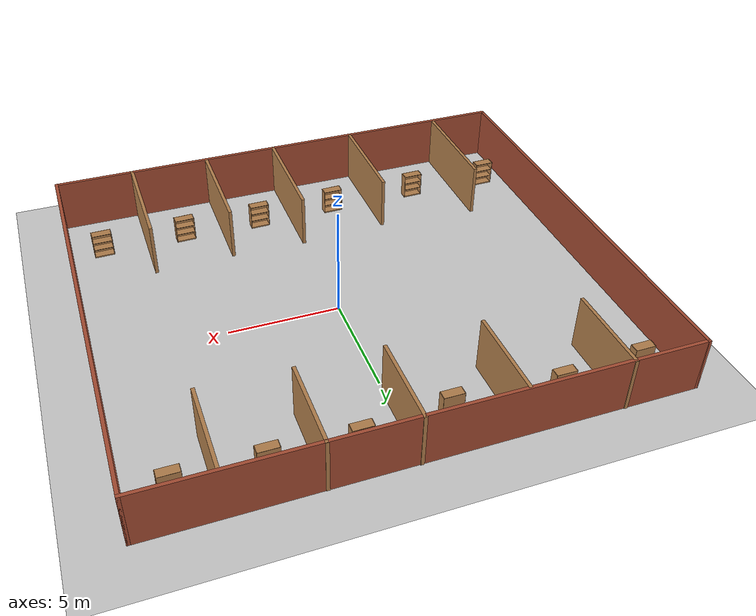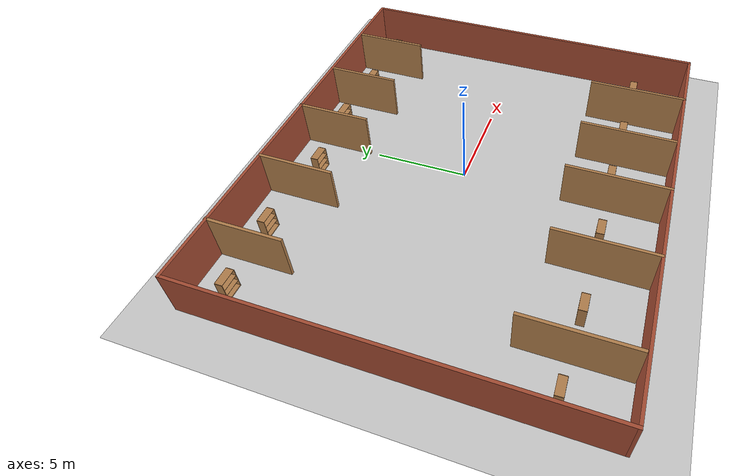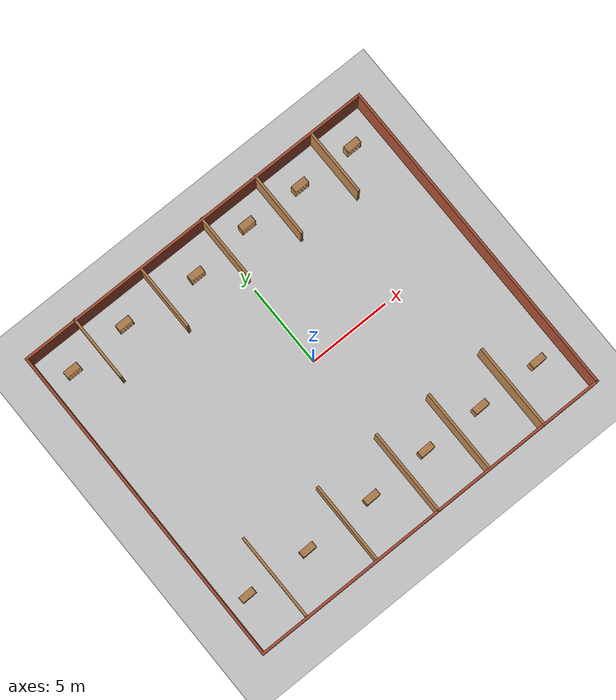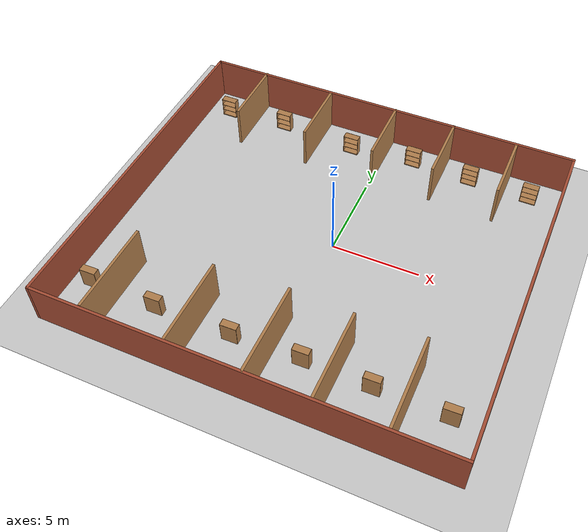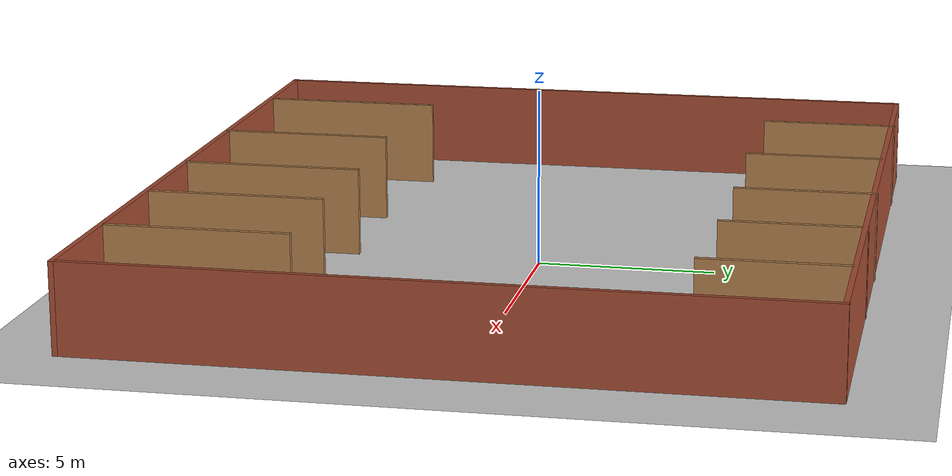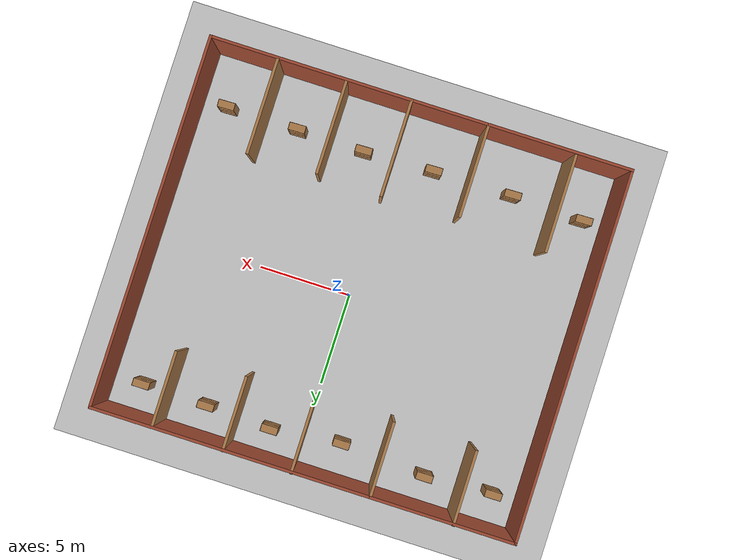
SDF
<sdf version="1.7">
 <world name="default">
  <light name="sun" type="directional">
   <pose>0 0 10 0 -0 0</pose>
   <diffuse>0.8 0.8 0.8 1</diffuse>
   <specular>0.2 0.2 0.2 1</specular>
   <attenuation>
    <range>1000</range>
    <constant>0.9</constant>
    <linear>0.01</linear>
    <quadratic>0.001</quadratic>
   </attenuation>
   <direction>-0.5 0.1 -0.9</direction>
   <spot><inner_angle>0</inner_angle><outer_angle>0</outer_angle><falloff>0</falloff></spot>
  </light>
  <model name="ground_plane">
   <static>1</static>
   <link name="link">
    <collision name="collision">
     <geometry><plane><normal>0 0 1</normal><size>100 100</size></plane></geometry>
     <surface><friction><ode><mu>100</mu><mu2>50</mu2></ode></friction></surface>
    </collision>
    <visual name="visual">
     <cast_shadows>0</cast_shadows>
     <geometry><plane><normal>0 0 1</normal><size>100 100</size></plane></geometry>
     <material>
      <script><uri>file://media/materials/scripts/gazebo.material</uri><name>Gazebo/Grey</name></script>
     </material>
    </visual>
   </link>
  </model>
  <gravity>0 0 -9.8</gravity>
  <magnetic_field>6e-06 2.3e-05 -4.2e-05</magnetic_field>
  <atmosphere type="adiabatic"/>
  <physics type="ode">
   <max_step_size>0.001</max_step_size>
   <real_time_factor>1</real_time_factor>
   <real_time_update_rate>1000</real_time_update_rate>
  </physics>
  <scene><ambient>0.4 0.4 0.4 1</ambient><background>0.7 0.7 0.7 1</background><shadows>1</shadows></scene>
  <audio><device>default</device></audio>
  <spherical_coordinates>
   <surface_model>EARTH_WGS84</surface_model>
   <latitude_deg>0</latitude_deg>
   <longitude_deg>0</longitude_deg>
   <elevation>0</elevation>
   <heading_deg>0</heading_deg>
  </spherical_coordinates>
  <model name="smart_factory">
   <pose>-0.561102 -0.508653 0 0 -0 0</pose>
   <link name="Wall_13">
    <collision name="Wall_13_Collision">
     <geometry><box><size>4 0.15 2.5</size></box></geometry>
     <pose>0 0 1.25 0 -0 0</pose>
    </collision>
    <visual name="Wall_13_Visual">
     <pose>0 0 1.25 0 -0 0</pose>
     <geometry><box><size>4 0.15 2.5</size></box></geometry>
     <material>
      <script><uri>file://media/materials/scripts/gazebo.material</uri><name>Gazebo/Wood</name></script>
      <ambient>1 1 1 1</ambient>
     </material>
     <meta><layer>0</layer></meta>
    </visual>
    <pose>-8.02693 8.01658 0 0 -0 -1.5708</pose>
   </link>
   <link name="Wall_15">
    <collision name="Wall_15_Collision">
     <geometry><box><size>4 0.15 2.5</size></box></geometry>
     <pose>0 0 1.25 0 -0 0</pose>
    </collision>
    <visual name="Wall_15_Visual">
     <pose>0 0 1.25 0 -0 0</pose>
     <geometry><box><size>4 0.15 2.5</size></box></geometry>
     <material>
      <script><uri>file://media/materials/scripts/gazebo.material</uri><name>Gazebo/Wood</name></script>
      <ambient>1 1 1 1</ambient>
     </material>
     <meta><layer>0</layer></meta>
    </visual>
    <pose>-3.60716 7.92353 0 0 -0 -1.5708</pose>
   </link>
   <link name="Wall_17">
    <collision name="Wall_17_Collision">
     <geometry><box><size>4 0.15 2.5</size></box></geometry>
     <pose>0 0 1.25 0 -0 0</pose>
    </collision>
    <visual name="Wall_17_Visual">
     <pose>0 0 1.25 0 -0 0</pose>
     <geometry><box><size>4 0.15 2.5</size></box></geometry>
     <material>
      <script><uri>file://media/materials/scripts/gazebo.material</uri><name>Gazebo/Wood</name></script>
      <ambient>1 1 1 1</ambient>
     </material>
     <meta><layer>0</layer></meta>
    </visual>
    <pose>0.579992 8.01658 0 0 -0 -1.5708</pose>
   </link>
   <link name="Wall_20">
    <collision name="Wall_20_Collision">
     <geometry><box><size>4 0.15 2.5</size></box></geometry>
     <pose>0 0 1.25 0 -0 0</pose>
    </collision>
    <visual name="Wall_20_Visual">
     <pose>0 0 1.25 0 -0 0</pose>
     <geometry><box><size>4 0.15 2.5</size></box></geometry>
     <material>
      <script><uri>file://media/materials/scripts/gazebo.material</uri><name>Gazebo/Wood</name></script>
      <ambient>1 1 1 1</ambient>
     </material>
     <meta><layer>0</layer></meta>
    </visual>
    <pose>4.22041 8.00192 0 0 -0 -1.5708</pose>
   </link>
   <link name="Wall_22">
    <collision name="Wall_22_Collision">
     <geometry><box><size>4 0.15 2.5</size></box></geometry>
     <pose>0 0 1.25 0 -0 0</pose>
    </collision>
    <visual name="Wall_22_Visual">
     <pose>0 0 1.25 0 -0 0</pose>
     <geometry><box><size>4 0.15 2.5</size></box></geometry>
     <material>
      <script><uri>file://media/materials/scripts/gazebo.material</uri><name>Gazebo/Wood</name></script>
      <ambient>1 1 1 1</ambient>
     </material>
     <meta><layer>0</layer></meta>
    </visual>
    <pose>8.00604 7.86619 0 0 -0 -1.5708</pose>
   </link>
   <link name="Wall_24">
    <collision name="Wall_24_Collision">
     <geometry><box><size>5.25 0.15 2.5</size></box></geometry>
     <pose>0 0 1.25 0 -0 0</pose>
    </collision>
    <visual name="Wall_24_Visual">
     <pose>0 0 1.25 0 -0 0</pose>
     <geometry><box><size>5.25 0.15 2.5</size></box></geometry>
     <material>
      <script><uri>file://media/materials/scripts/gazebo.material</uri><name>Gazebo/Wood</name></script>
      <ambient>1 1 1 1</ambient>
     </material>
     <meta><layer>0</layer></meta>
    </visual>
    <pose>-8.33576 -7.22006 0 0 -0 -1.5708</pose>
   </link>
   <link name="Wall_26">
    <collision name="Wall_26_Collision">
     <geometry><box><size>5 0.15 2.5</size></box></geometry>
     <pose>0 0 1.25 0 -0 0</pose>
    </collision>
    <visual name="Wall_26_Visual">
     <pose>0 0 1.25 0 -0 0</pose>
     <geometry><box><size>5 0.15 2.5</size></box></geometry>
     <material>
      <script><uri>file://media/materials/scripts/gazebo.material</uri><name>Gazebo/Wood</name></script>
      <ambient>1 1 1 1</ambient>
     </material>
     <meta><layer>0</layer></meta>
    </visual>
    <pose>-3.62754 -7.46957 0 0 -0 -1.5708</pose>
   </link>
   <link name="Wall_28">
    <collision name="Wall_28_Collision">
     <geometry><box><size>5.25 0.15 2.5</size></box></geometry>
     <pose>0 0 1.25 0 -0 0</pose>
    </collision>
    <visual name="Wall_28_Visual">
     <pose>0 0 1.25 0 -0 0</pose>
     <geometry><box><size>5.25 0.15 2.5</size></box></geometry>
     <material>
      <script><uri>file://media/materials/scripts/gazebo.material</uri><name>Gazebo/Wood</name></script>
      <ambient>1 1 1 1</ambient>
     </material>
     <meta><layer>0</layer></meta>
    </visual>
    <pose>0.507145 -7.38789 0 0 -0 -1.5708</pose>
   </link>
   <link name="Wall_30">
    <collision name="Wall_30_Collision">
     <geometry><box><size>5 0.15 2.5</size></box></geometry>
     <pose>0 0 1.25 0 -0 0</pose>
    </collision>
    <visual name="Wall_30_Visual">
     <pose>0 0 1.25 0 -0 0</pose>
     <geometry><box><size>5 0.15 2.5</size></box></geometry>
     <material>
      <script><uri>file://media/materials/scripts/gazebo.material</uri><name>Gazebo/Wood</name></script>
      <ambient>1 1 1 1</ambient>
     </material>
     <meta><layer>0</layer></meta>
    </visual>
    <pose>3.98481 -7.3699 0 0 -0 -1.5708</pose>
   </link>
   <link name="Wall_32">
    <collision name="Wall_32_Collision">
     <geometry><box><size>5.25 0.15 2.5</size></box></geometry>
     <pose>0 0 1.25 0 -0 0</pose>
    </collision>
    <visual name="Wall_32_Visual">
     <pose>0 0 1.25 0 -0 0</pose>
     <geometry><box><size>5.25 0.15 2.5</size></box></geometry>
     <material>
      <script><uri>file://media/materials/scripts/gazebo.material</uri><name>Gazebo/Wood</name></script>
      <ambient>1 1 1 1</ambient>
     </material>
     <meta><layer>0</layer></meta>
    </visual>
    <pose>7.67648 -7.38789 0 0 -0 -1.5708</pose>
   </link>
   <link name="Wall_6">
    <collision name="Wall_6_Collision">
     <geometry><box><size>22.75 0.15 2.5</size></box></geometry>
     <pose>0 0 1.25 0 -0 0</pose>
    </collision>
    <visual name="Wall_6_Visual">
     <pose>0 0 1.25 0 -0 0</pose>
     <geometry><box><size>22.75 0.15 2.5</size></box></geometry>
     <material>
      <script><uri>file://media/materials/scripts/gazebo.material</uri><name>Gazebo/Bricks</name></script>
      <ambient>1 1 1 1</ambient>
     </material>
     <meta><layer>0</layer></meta>
    </visual>
    <pose>-0 9.90842 0 0 -0 0</pose>
   </link>
   <link name="Wall_7">
    <collision name="Wall_7_Collision">
     <geometry><box><size>20 0.15 2.5</size></box></geometry>
     <pose>0 0 1.25 0 -0 0</pose>
    </collision>
    <visual name="Wall_7_Visual">
     <pose>0 0 1.25 0 -0 0</pose>
     <geometry><box><size>20 0.15 2.5</size></box></geometry>
     <material>
      <script><uri>file://media/materials/scripts/gazebo.material</uri><name>Gazebo/Bricks</name></script>
      <ambient>1 1 1 1</ambient>
     </material>
     <meta><layer>0</layer></meta>
    </visual>
    <pose>11.3 -0.016579 0 0 -0 -1.5708</pose>
   </link>
   <link name="Wall_8">
    <collision name="Wall_8_Collision">
     <geometry><box><size>22.75 0.15 2.5</size></box></geometry>
     <pose>0 0 1.25 0 -0 0</pose>
    </collision>
    <visual name="Wall_8_Visual">
     <pose>0 0 1.25 0 -0 0</pose>
     <geometry><box><size>22.75 0.15 2.5</size></box></geometry>
     <material>
      <script><uri>file://media/materials/scripts/gazebo.material</uri><name>Gazebo/Bricks</name></script>
      <ambient>1 1 1 1</ambient>
     </material>
     <meta><layer>0</layer></meta>
    </visual>
    <pose>-0 -9.94158 0 0 -0 3.14159</pose>
   </link>
   <link name="Wall_9">
    <collision name="Wall_9_Collision">
     <geometry><box><size>20 0.15 2.5</size></box></geometry>
     <pose>0 0 1.25 0 -0 0</pose>
    </collision>
    <visual name="Wall_9_Visual">
     <pose>0 0 1.25 0 -0 0</pose>
     <geometry><box><size>20 0.15 2.5</size></box></geometry>
     <material>
      <script><uri>file://media/materials/scripts/gazebo.material</uri><name>Gazebo/Bricks</name></script>
      <ambient>1 1 1 1</ambient>
     </material>
     <meta><layer>0</layer></meta>
    </visual>
    <pose>-11.3 -0.016579 0 0 -0 1.5708</pose>
   </link>
   <static>1</static>
  </model>
  <model name="bookshelf">
   <static>1</static>
   <link name="link">
    <inertial><mass>1</mass></inertial>
    <collision name="back">
     <pose>0 0.005 0.6 0 -0 0</pose>
     <geometry><box><size>0.9 0.01 1.2</size></box></geometry>
    </collision>
    <visual name="visual1">
     <pose>0 0.005 0.6 0 -0 0</pose>
     <geometry><box><size>0.9 0.01 1.2</size></box></geometry>
     <material>
      <script><uri>file://media/materials/scripts/gazebo.material</uri><name>Gazebo/Wood</name></script>
     </material>
    </visual>
    <collision name="left_side">
     <pose>0.45 -0.195 0.6 0 -0 0</pose>
     <geometry><box><size>0.02 0.4 1.2</size></box></geometry>
    </collision>
    <visual name="visual2">
     <pose>0.45 -0.195 0.6 0 -0 0</pose>
     <geometry><box><size>0.02 0.4 1.2</size></box></geometry>
     <material>
      <script><uri>file://media/materials/scripts/gazebo.material</uri><name>Gazebo/Wood</name></script>
     </material>
    </visual>
    <collision name="right_side">
     <pose>-0.45 -0.195 0.6 0 -0 0</pose>
     <geometry><box><size>0.02 0.4 1.2</size></box></geometry>
    </collision>
    <visual name="visual3">
     <pose>-0.45 -0.195 0.6 0 -0 0</pose>
     <geometry><box><size>0.02 0.4 1.2</size></box></geometry>
     <material>
      <script><uri>file://media/materials/scripts/gazebo.material</uri><name>Gazebo/Wood</name></script>
     </material>
    </visual>
    <collision name="bottom">
     <pose>0 -0.195 0.03 0 -0 0</pose>
     <geometry><box><size>0.88 0.4 0.06</size></box></geometry>
    </collision>
    <visual name="visual4">
     <pose>0 -0.195 0.03 0 -0 0</pose>
     <geometry><box><size>0.88 0.4 0.06</size></box></geometry>
     <material>
      <script><uri>file://media/materials/scripts/gazebo.material</uri><name>Gazebo/Wood</name></script>
     </material>
    </visual>
    <collision name="top">
     <pose>0 -0.195 1.19 0 -0 0</pose>
     <geometry><box><size>0.88 0.4 0.02</size></box></geometry>
    </collision>
    <visual name="visual5">
     <pose>0 -0.195 1.19 0 -0 0</pose>
     <geometry><box><size>0.88 0.4 0.02</size></box></geometry>
     <material>
      <script><uri>file://media/materials/scripts/gazebo.material</uri><name>Gazebo/Wood</name></script>
     </material>
    </visual>
    <collision name="low_shelf">
     <pose>0 -0.195 0.43 0 -0 0</pose>
     <geometry><box><size>0.88 0.4 0.02</size></box></geometry>
    </collision>
    <visual name="visual6">
     <pose>0 -0.195 0.43 0 -0 0</pose>
     <geometry><box><size>0.88 0.4 0.02</size></box></geometry>
     <material>
      <script><uri>file://media/materials/scripts/gazebo.material</uri><name>Gazebo/Wood</name></script>
     </material>
    </visual>
    <collision name="high_shelf">
     <pose>0 -0.195 0.8 0 -0 0</pose>
     <geometry><box><size>0.88 0.4 0.02</size></box></geometry>
    </collision>
    <visual name="visual7">
     <pose>0 -0.195 0.8 0 -0 0</pose>
     <geometry><box><size>0.88 0.4 0.02</size></box></geometry>
     <material>
      <script><uri>file://media/materials/scripts/gazebo.material</uri><name>Gazebo/Wood</name></script>
     </material>
    </visual>
   </link>
   <pose>8.95898 7.93404 0 0 -0 0</pose>
  </model>
  <model name="bookshelf_0">
   <static>1</static>
   <link name="link">
    <inertial><mass>1</mass></inertial>
    <collision name="back">
     <pose>0 0.005 0.6 0 -0 0</pose>
     <geometry><box><size>0.9 0.01 1.2</size></box></geometry>
    </collision>
    <visual name="visual1">
     <pose>0 0.005 0.6 0 -0 0</pose>
     <geometry><box><size>0.9 0.01 1.2</size></box></geometry>
     <material>
      <script><uri>file://media/materials/scripts/gazebo.material</uri><name>Gazebo/Wood</name></script>
     </material>
    </visual>
    <collision name="left_side">
     <pose>0.45 -0.195 0.6 0 -0 0</pose>
     <geometry><box><size>0.02 0.4 1.2</size></box></geometry>
    </collision>
    <visual name="visual2">
     <pose>0.45 -0.195 0.6 0 -0 0</pose>
     <geometry><box><size>0.02 0.4 1.2</size></box></geometry>
     <material>
      <script><uri>file://media/materials/scripts/gazebo.material</uri><name>Gazebo/Wood</name></script>
     </material>
    </visual>
    <collision name="right_side">
     <pose>-0.45 -0.195 0.6 0 -0 0</pose>
     <geometry><box><size>0.02 0.4 1.2</size></box></geometry>
    </collision>
    <visual name="visual3">
     <pose>-0.45 -0.195 0.6 0 -0 0</pose>
     <geometry><box><size>0.02 0.4 1.2</size></box></geometry>
     <material>
      <script><uri>file://media/materials/scripts/gazebo.material</uri><name>Gazebo/Wood</name></script>
     </material>
    </visual>
    <collision name="bottom">
     <pose>0 -0.195 0.03 0 -0 0</pose>
     <geometry><box><size>0.88 0.4 0.06</size></box></geometry>
    </collision>
    <visual name="visual4">
     <pose>0 -0.195 0.03 0 -0 0</pose>
     <geometry><box><size>0.88 0.4 0.06</size></box></geometry>
     <material>
      <script><uri>file://media/materials/scripts/gazebo.material</uri><name>Gazebo/Wood</name></script>
     </material>
    </visual>
    <collision name="top">
     <pose>0 -0.195 1.19 0 -0 0</pose>
     <geometry><box><size>0.88 0.4 0.02</size></box></geometry>
    </collision>
    <visual name="visual5">
     <pose>0 -0.195 1.19 0 -0 0</pose>
     <geometry><box><size>0.88 0.4 0.02</size></box></geometry>
     <material>
      <script><uri>file://media/materials/scripts/gazebo.material</uri><name>Gazebo/Wood</name></script>
     </material>
    </visual>
    <collision name="low_shelf">
     <pose>0 -0.195 0.43 0 -0 0</pose>
     <geometry><box><size>0.88 0.4 0.02</size></box></geometry>
    </collision>
    <visual name="visual6">
     <pose>0 -0.195 0.43 0 -0 0</pose>
     <geometry><box><size>0.88 0.4 0.02</size></box></geometry>
     <material>
      <script><uri>file://media/materials/scripts/gazebo.material</uri><name>Gazebo/Wood</name></script>
     </material>
    </visual>
    <collision name="high_shelf">
     <pose>0 -0.195 0.8 0 -0 0</pose>
     <geometry><box><size>0.88 0.4 0.02</size></box></geometry>
    </collision>
    <visual name="visual7">
     <pose>0 -0.195 0.8 0 -0 0</pose>
     <geometry><box><size>0.88 0.4 0.02</size></box></geometry>
     <material>
      <script><uri>file://media/materials/scripts/gazebo.material</uri><name>Gazebo/Wood</name></script>
     </material>
    </visual>
   </link>
   <pose>5.38531 8.00358 0 0 -0 0</pose>
  </model>
  <model name="bookshelf_1">
   <static>1</static>
   <link name="link">
    <inertial><mass>1</mass></inertial>
    <collision name="back">
     <pose>0 0.005 0.6 0 -0 0</pose>
     <geometry><box><size>0.9 0.01 1.2</size></box></geometry>
    </collision>
    <visual name="visual1">
     <pose>0 0.005 0.6 0 -0 0</pose>
     <geometry><box><size>0.9 0.01 1.2</size></box></geometry>
     <material>
      <script><uri>file://media/materials/scripts/gazebo.material</uri><name>Gazebo/Wood</name></script>
     </material>
    </visual>
    <collision name="left_side">
     <pose>0.45 -0.195 0.6 0 -0 0</pose>
     <geometry><box><size>0.02 0.4 1.2</size></box></geometry>
    </collision>
    <visual name="visual2">
     <pose>0.45 -0.195 0.6 0 -0 0</pose>
     <geometry><box><size>0.02 0.4 1.2</size></box></geometry>
     <material>
      <script><uri>file://media/materials/scripts/gazebo.material</uri><name>Gazebo/Wood</name></script>
     </material>
    </visual>
    <collision name="right_side">
     <pose>-0.45 -0.195 0.6 0 -0 0</pose>
     <geometry><box><size>0.02 0.4 1.2</size></box></geometry>
    </collision>
    <visual name="visual3">
     <pose>-0.45 -0.195 0.6 0 -0 0</pose>
     <geometry><box><size>0.02 0.4 1.2</size></box></geometry>
     <material>
      <script><uri>file://media/materials/scripts/gazebo.material</uri><name>Gazebo/Wood</name></script>
     </material>
    </visual>
    <collision name="bottom">
     <pose>0 -0.195 0.03 0 -0 0</pose>
     <geometry><box><size>0.88 0.4 0.06</size></box></geometry>
    </collision>
    <visual name="visual4">
     <pose>0 -0.195 0.03 0 -0 0</pose>
     <geometry><box><size>0.88 0.4 0.06</size></box></geometry>
     <material>
      <script><uri>file://media/materials/scripts/gazebo.material</uri><name>Gazebo/Wood</name></script>
     </material>
    </visual>
    <collision name="top">
     <pose>0 -0.195 1.19 0 -0 0</pose>
     <geometry><box><size>0.88 0.4 0.02</size></box></geometry>
    </collision>
    <visual name="visual5">
     <pose>0 -0.195 1.19 0 -0 0</pose>
     <geometry><box><size>0.88 0.4 0.02</size></box></geometry>
     <material>
      <script><uri>file://media/materials/scripts/gazebo.material</uri><name>Gazebo/Wood</name></script>
     </material>
    </visual>
    <collision name="low_shelf">
     <pose>0 -0.195 0.43 0 -0 0</pose>
     <geometry><box><size>0.88 0.4 0.02</size></box></geometry>
    </collision>
    <visual name="visual6">
     <pose>0 -0.195 0.43 0 -0 0</pose>
     <geometry><box><size>0.88 0.4 0.02</size></box></geometry>
     <material>
      <script><uri>file://media/materials/scripts/gazebo.material</uri><name>Gazebo/Wood</name></script>
     </material>
    </visual>
    <collision name="high_shelf">
     <pose>0 -0.195 0.8 0 -0 0</pose>
     <geometry><box><size>0.88 0.4 0.02</size></box></geometry>
    </collision>
    <visual name="visual7">
     <pose>0 -0.195 0.8 0 -0 0</pose>
     <geometry><box><size>0.88 0.4 0.02</size></box></geometry>
     <material>
      <script><uri>file://media/materials/scripts/gazebo.material</uri><name>Gazebo/Wood</name></script>
     </material>
    </visual>
   </link>
   <pose>1.83019 8.15231 0 0 -0 0</pose>
  </model>
  <model name="bookshelf_2">
   <static>1</static>
   <link name="link">
    <inertial><mass>1</mass></inertial>
    <collision name="back">
     <pose>0 0.005 0.6 0 -0 0</pose>
     <geometry><box><size>0.9 0.01 1.2</size></box></geometry>
    </collision>
    <visual name="visual1">
     <pose>0 0.005 0.6 0 -0 0</pose>
     <geometry><box><size>0.9 0.01 1.2</size></box></geometry>
     <material>
      <script><uri>file://media/materials/scripts/gazebo.material</uri><name>Gazebo/Wood</name></script>
     </material>
    </visual>
    <collision name="left_side">
     <pose>0.45 -0.195 0.6 0 -0 0</pose>
     <geometry><box><size>0.02 0.4 1.2</size></box></geometry>
    </collision>
    <visual name="visual2">
     <pose>0.45 -0.195 0.6 0 -0 0</pose>
     <geometry><box><size>0.02 0.4 1.2</size></box></geometry>
     <material>
      <script><uri>file://media/materials/scripts/gazebo.material</uri><name>Gazebo/Wood</name></script>
     </material>
    </visual>
    <collision name="right_side">
     <pose>-0.45 -0.195 0.6 0 -0 0</pose>
     <geometry><box><size>0.02 0.4 1.2</size></box></geometry>
    </collision>
    <visual name="visual3">
     <pose>-0.45 -0.195 0.6 0 -0 0</pose>
     <geometry><box><size>0.02 0.4 1.2</size></box></geometry>
     <material>
      <script><uri>file://media/materials/scripts/gazebo.material</uri><name>Gazebo/Wood</name></script>
     </material>
    </visual>
    <collision name="bottom">
     <pose>0 -0.195 0.03 0 -0 0</pose>
     <geometry><box><size>0.88 0.4 0.06</size></box></geometry>
    </collision>
    <visual name="visual4">
     <pose>0 -0.195 0.03 0 -0 0</pose>
     <geometry><box><size>0.88 0.4 0.06</size></box></geometry>
     <material>
      <script><uri>file://media/materials/scripts/gazebo.material</uri><name>Gazebo/Wood</name></script>
     </material>
    </visual>
    <collision name="top">
     <pose>0 -0.195 1.19 0 -0 0</pose>
     <geometry><box><size>0.88 0.4 0.02</size></box></geometry>
    </collision>
    <visual name="visual5">
     <pose>0 -0.195 1.19 0 -0 0</pose>
     <geometry><box><size>0.88 0.4 0.02</size></box></geometry>
     <material>
      <script><uri>file://media/materials/scripts/gazebo.material</uri><name>Gazebo/Wood</name></script>
     </material>
    </visual>
    <collision name="low_shelf">
     <pose>0 -0.195 0.43 0 -0 0</pose>
     <geometry><box><size>0.88 0.4 0.02</size></box></geometry>
    </collision>
    <visual name="visual6">
     <pose>0 -0.195 0.43 0 -0 0</pose>
     <geometry><box><size>0.88 0.4 0.02</size></box></geometry>
     <material>
      <script><uri>file://media/materials/scripts/gazebo.material</uri><name>Gazebo/Wood</name></script>
     </material>
    </visual>
    <collision name="high_shelf">
     <pose>0 -0.195 0.8 0 -0 0</pose>
     <geometry><box><size>0.88 0.4 0.02</size></box></geometry>
    </collision>
    <visual name="visual7">
     <pose>0 -0.195 0.8 0 -0 0</pose>
     <geometry><box><size>0.88 0.4 0.02</size></box></geometry>
     <material>
      <script><uri>file://media/materials/scripts/gazebo.material</uri><name>Gazebo/Wood</name></script>
     </material>
    </visual>
   </link>
   <pose>-1.9992 7.73375 0 0 -0 0</pose>
  </model>
  <model name="bookshelf_3">
   <static>1</static>
   <link name="link">
    <inertial><mass>1</mass></inertial>
    <collision name="back">
     <pose>0 0.005 0.6 0 -0 0</pose>
     <geometry><box><size>0.9 0.01 1.2</size></box></geometry>
    </collision>
    <visual name="visual1">
     <pose>0 0.005 0.6 0 -0 0</pose>
     <geometry><box><size>0.9 0.01 1.2</size></box></geometry>
     <material>
      <script><uri>file://media/materials/scripts/gazebo.material</uri><name>Gazebo/Wood</name></script>
     </material>
    </visual>
    <collision name="left_side">
     <pose>0.45 -0.195 0.6 0 -0 0</pose>
     <geometry><box><size>0.02 0.4 1.2</size></box></geometry>
    </collision>
    <visual name="visual2">
     <pose>0.45 -0.195 0.6 0 -0 0</pose>
     <geometry><box><size>0.02 0.4 1.2</size></box></geometry>
     <material>
      <script><uri>file://media/materials/scripts/gazebo.material</uri><name>Gazebo/Wood</name></script>
     </material>
    </visual>
    <collision name="right_side">
     <pose>-0.45 -0.195 0.6 0 -0 0</pose>
     <geometry><box><size>0.02 0.4 1.2</size></box></geometry>
    </collision>
    <visual name="visual3">
     <pose>-0.45 -0.195 0.6 0 -0 0</pose>
     <geometry><box><size>0.02 0.4 1.2</size></box></geometry>
     <material>
      <script><uri>file://media/materials/scripts/gazebo.material</uri><name>Gazebo/Wood</name></script>
     </material>
    </visual>
    <collision name="bottom">
     <pose>0 -0.195 0.03 0 -0 0</pose>
     <geometry><box><size>0.88 0.4 0.06</size></box></geometry>
    </collision>
    <visual name="visual4">
     <pose>0 -0.195 0.03 0 -0 0</pose>
     <geometry><box><size>0.88 0.4 0.06</size></box></geometry>
     <material>
      <script><uri>file://media/materials/scripts/gazebo.material</uri><name>Gazebo/Wood</name></script>
     </material>
    </visual>
    <collision name="top">
     <pose>0 -0.195 1.19 0 -0 0</pose>
     <geometry><box><size>0.88 0.4 0.02</size></box></geometry>
    </collision>
    <visual name="visual5">
     <pose>0 -0.195 1.19 0 -0 0</pose>
     <geometry><box><size>0.88 0.4 0.02</size></box></geometry>
     <material>
      <script><uri>file://media/materials/scripts/gazebo.material</uri><name>Gazebo/Wood</name></script>
     </material>
    </visual>
    <collision name="low_shelf">
     <pose>0 -0.195 0.43 0 -0 0</pose>
     <geometry><box><size>0.88 0.4 0.02</size></box></geometry>
    </collision>
    <visual name="visual6">
     <pose>0 -0.195 0.43 0 -0 0</pose>
     <geometry><box><size>0.88 0.4 0.02</size></box></geometry>
     <material>
      <script><uri>file://media/materials/scripts/gazebo.material</uri><name>Gazebo/Wood</name></script>
     </material>
    </visual>
    <collision name="high_shelf">
     <pose>0 -0.195 0.8 0 -0 0</pose>
     <geometry><box><size>0.88 0.4 0.02</size></box></geometry>
    </collision>
    <visual name="visual7">
     <pose>0 -0.195 0.8 0 -0 0</pose>
     <geometry><box><size>0.88 0.4 0.02</size></box></geometry>
     <material>
      <script><uri>file://media/materials/scripts/gazebo.material</uri><name>Gazebo/Wood</name></script>
     </material>
    </visual>
   </link>
   <pose>-6.6604 8.06024 0 0 -0 0</pose>
  </model>
  <model name="bookshelf_4">
   <static>1</static>
   <link name="link">
    <inertial><mass>1</mass></inertial>
    <collision name="back">
     <pose>0 0.005 0.6 0 -0 0</pose>
     <geometry><box><size>0.9 0.01 1.2</size></box></geometry>
    </collision>
    <visual name="visual1">
     <pose>0 0.005 0.6 0 -0 0</pose>
     <geometry><box><size>0.9 0.01 1.2</size></box></geometry>
     <material>
      <script><uri>file://media/materials/scripts/gazebo.material</uri><name>Gazebo/Wood</name></script>
     </material>
    </visual>
    <collision name="left_side">
     <pose>0.45 -0.195 0.6 0 -0 0</pose>
     <geometry><box><size>0.02 0.4 1.2</size></box></geometry>
    </collision>
    <visual name="visual2">
     <pose>0.45 -0.195 0.6 0 -0 0</pose>
     <geometry><box><size>0.02 0.4 1.2</size></box></geometry>
     <material>
      <script><uri>file://media/materials/scripts/gazebo.material</uri><name>Gazebo/Wood</name></script>
     </material>
    </visual>
    <collision name="right_side">
     <pose>-0.45 -0.195 0.6 0 -0 0</pose>
     <geometry><box><size>0.02 0.4 1.2</size></box></geometry>
    </collision>
    <visual name="visual3">
     <pose>-0.45 -0.195 0.6 0 -0 0</pose>
     <geometry><box><size>0.02 0.4 1.2</size></box></geometry>
     <material>
      <script><uri>file://media/materials/scripts/gazebo.material</uri><name>Gazebo/Wood</name></script>
     </material>
    </visual>
    <collision name="bottom">
     <pose>0 -0.195 0.03 0 -0 0</pose>
     <geometry><box><size>0.88 0.4 0.06</size></box></geometry>
    </collision>
    <visual name="visual4">
     <pose>0 -0.195 0.03 0 -0 0</pose>
     <geometry><box><size>0.88 0.4 0.06</size></box></geometry>
     <material>
      <script><uri>file://media/materials/scripts/gazebo.material</uri><name>Gazebo/Wood</name></script>
     </material>
    </visual>
    <collision name="top">
     <pose>0 -0.195 1.19 0 -0 0</pose>
     <geometry><box><size>0.88 0.4 0.02</size></box></geometry>
    </collision>
    <visual name="visual5">
     <pose>0 -0.195 1.19 0 -0 0</pose>
     <geometry><box><size>0.88 0.4 0.02</size></box></geometry>
     <material>
      <script><uri>file://media/materials/scripts/gazebo.material</uri><name>Gazebo/Wood</name></script>
     </material>
    </visual>
    <collision name="low_shelf">
     <pose>0 -0.195 0.43 0 -0 0</pose>
     <geometry><box><size>0.88 0.4 0.02</size></box></geometry>
    </collision>
    <visual name="visual6">
     <pose>0 -0.195 0.43 0 -0 0</pose>
     <geometry><box><size>0.88 0.4 0.02</size></box></geometry>
     <material>
      <script><uri>file://media/materials/scripts/gazebo.material</uri><name>Gazebo/Wood</name></script>
     </material>
    </visual>
    <collision name="high_shelf">
     <pose>0 -0.195 0.8 0 -0 0</pose>
     <geometry><box><size>0.88 0.4 0.02</size></box></geometry>
    </collision>
    <visual name="visual7">
     <pose>0 -0.195 0.8 0 -0 0</pose>
     <geometry><box><size>0.88 0.4 0.02</size></box></geometry>
     <material>
      <script><uri>file://media/materials/scripts/gazebo.material</uri><name>Gazebo/Wood</name></script>
     </material>
    </visual>
   </link>
   <pose>-10.3734 7.84133 0 0 -0 0</pose>
  </model>
  <model name="bookshelf_5">
   <static>1</static>
   <link name="link">
    <inertial><mass>1</mass></inertial>
    <collision name="back">
     <pose>0 0.005 0.6 0 -0 0</pose>
     <geometry><box><size>0.9 0.01 1.2</size></box></geometry>
    </collision>
    <visual name="visual1">
     <pose>0 0.005 0.6 0 -0 0</pose>
     <geometry><box><size>0.9 0.01 1.2</size></box></geometry>
     <material>
      <script><uri>file://media/materials/scripts/gazebo.material</uri><name>Gazebo/Wood</name></script>
     </material>
    </visual>
    <collision name="left_side">
     <pose>0.45 -0.195 0.6 0 -0 0</pose>
     <geometry><box><size>0.02 0.4 1.2</size></box></geometry>
    </collision>
    <visual name="visual2">
     <pose>0.45 -0.195 0.6 0 -0 0</pose>
     <geometry><box><size>0.02 0.4 1.2</size></box></geometry>
     <material>
      <script><uri>file://media/materials/scripts/gazebo.material</uri><name>Gazebo/Wood</name></script>
     </material>
    </visual>
    <collision name="right_side">
     <pose>-0.45 -0.195 0.6 0 -0 0</pose>
     <geometry><box><size>0.02 0.4 1.2</size></box></geometry>
    </collision>
    <visual name="visual3">
     <pose>-0.45 -0.195 0.6 0 -0 0</pose>
     <geometry><box><size>0.02 0.4 1.2</size></box></geometry>
     <material>
      <script><uri>file://media/materials/scripts/gazebo.material</uri><name>Gazebo/Wood</name></script>
     </material>
    </visual>
    <collision name="bottom">
     <pose>0 -0.195 0.03 0 -0 0</pose>
     <geometry><box><size>0.88 0.4 0.06</size></box></geometry>
    </collision>
    <visual name="visual4">
     <pose>0 -0.195 0.03 0 -0 0</pose>
     <geometry><box><size>0.88 0.4 0.06</size></box></geometry>
     <material>
      <script><uri>file://media/materials/scripts/gazebo.material</uri><name>Gazebo/Wood</name></script>
     </material>
    </visual>
    <collision name="top">
     <pose>0 -0.195 1.19 0 -0 0</pose>
     <geometry><box><size>0.88 0.4 0.02</size></box></geometry>
    </collision>
    <visual name="visual5">
     <pose>0 -0.195 1.19 0 -0 0</pose>
     <geometry><box><size>0.88 0.4 0.02</size></box></geometry>
     <material>
      <script><uri>file://media/materials/scripts/gazebo.material</uri><name>Gazebo/Wood</name></script>
     </material>
    </visual>
    <collision name="low_shelf">
     <pose>0 -0.195 0.43 0 -0 0</pose>
     <geometry><box><size>0.88 0.4 0.02</size></box></geometry>
    </collision>
    <visual name="visual6">
     <pose>0 -0.195 0.43 0 -0 0</pose>
     <geometry><box><size>0.88 0.4 0.02</size></box></geometry>
     <material>
      <script><uri>file://media/materials/scripts/gazebo.material</uri><name>Gazebo/Wood</name></script>
     </material>
    </visual>
    <collision name="high_shelf">
     <pose>0 -0.195 0.8 0 -0 0</pose>
     <geometry><box><size>0.88 0.4 0.02</size></box></geometry>
    </collision>
    <visual name="visual7">
     <pose>0 -0.195 0.8 0 -0 0</pose>
     <geometry><box><size>0.88 0.4 0.02</size></box></geometry>
     <material>
      <script><uri>file://media/materials/scripts/gazebo.material</uri><name>Gazebo/Wood</name></script>
     </material>
    </visual>
   </link>
   <pose>9.22281 -7.79094 0 0 -0 -3.11758</pose>
  </model>
  <model name="bookshelf_5_clone">
   <static>1</static>
   <link name="link">
    <inertial><mass>1</mass></inertial>
    <collision name="back">
     <pose>0 0.005 0.6 0 -0 0</pose>
     <geometry><box><size>0.9 0.01 1.2</size></box></geometry>
    </collision>
    <visual name="visual1">
     <pose>0 0.005 0.6 0 -0 0</pose>
     <geometry><box><size>0.9 0.01 1.2</size></box></geometry>
     <material>
      <script><uri>file://media/materials/scripts/gazebo.material</uri><name>Gazebo/Wood</name></script>
     </material>
    </visual>
    <collision name="left_side">
     <pose>0.45 -0.195 0.6 0 -0 0</pose>
     <geometry><box><size>0.02 0.4 1.2</size></box></geometry>
    </collision>
    <visual name="visual2">
     <pose>0.45 -0.195 0.6 0 -0 0</pose>
     <geometry><box><size>0.02 0.4 1.2</size></box></geometry>
     <material>
      <script><uri>file://media/materials/scripts/gazebo.material</uri><name>Gazebo/Wood</name></script>
     </material>
    </visual>
    <collision name="right_side">
     <pose>-0.45 -0.195 0.6 0 -0 0</pose>
     <geometry><box><size>0.02 0.4 1.2</size></box></geometry>
    </collision>
    <visual name="visual3">
     <pose>-0.45 -0.195 0.6 0 -0 0</pose>
     <geometry><box><size>0.02 0.4 1.2</size></box></geometry>
     <material>
      <script><uri>file://media/materials/scripts/gazebo.material</uri><name>Gazebo/Wood</name></script>
     </material>
    </visual>
    <collision name="bottom">
     <pose>0 -0.195 0.03 0 -0 0</pose>
     <geometry><box><size>0.88 0.4 0.06</size></box></geometry>
    </collision>
    <visual name="visual4">
     <pose>0 -0.195 0.03 0 -0 0</pose>
     <geometry><box><size>0.88 0.4 0.06</size></box></geometry>
     <material>
      <script><uri>file://media/materials/scripts/gazebo.material</uri><name>Gazebo/Wood</name></script>
     </material>
    </visual>
    <collision name="top">
     <pose>0 -0.195 1.19 0 -0 0</pose>
     <geometry><box><size>0.88 0.4 0.02</size></box></geometry>
    </collision>
    <visual name="visual5">
     <pose>0 -0.195 1.19 0 -0 0</pose>
     <geometry><box><size>0.88 0.4 0.02</size></box></geometry>
     <material>
      <script><uri>file://media/materials/scripts/gazebo.material</uri><name>Gazebo/Wood</name></script>
     </material>
    </visual>
    <collision name="low_shelf">
     <pose>0 -0.195 0.43 0 -0 0</pose>
     <geometry><box><size>0.88 0.4 0.02</size></box></geometry>
    </collision>
    <visual name="visual6">
     <pose>0 -0.195 0.43 0 -0 0</pose>
     <geometry><box><size>0.88 0.4 0.02</size></box></geometry>
     <material>
      <script><uri>file://media/materials/scripts/gazebo.material</uri><name>Gazebo/Wood</name></script>
     </material>
    </visual>
    <collision name="high_shelf">
     <pose>0 -0.195 0.8 0 -0 0</pose>
     <geometry><box><size>0.88 0.4 0.02</size></box></geometry>
    </collision>
    <visual name="visual7">
     <pose>0 -0.195 0.8 0 -0 0</pose>
     <geometry><box><size>0.88 0.4 0.02</size></box></geometry>
     <material>
      <script><uri>file://media/materials/scripts/gazebo.material</uri><name>Gazebo/Wood</name></script>
     </material>
    </visual>
   </link>
   <pose>5.29064 -7.76968 0 0 0 -3.11758</pose>
  </model>
  <model name="bookshelf_5_clone_0">
   <static>1</static>
   <link name="link">
    <inertial><mass>1</mass></inertial>
    <collision name="back">
     <pose>0 0.005 0.6 0 -0 0</pose>
     <geometry><box><size>0.9 0.01 1.2</size></box></geometry>
    </collision>
    <visual name="visual1">
     <pose>0 0.005 0.6 0 -0 0</pose>
     <geometry><box><size>0.9 0.01 1.2</size></box></geometry>
     <material>
      <script><uri>file://media/materials/scripts/gazebo.material</uri><name>Gazebo/Wood</name></script>
     </material>
    </visual>
    <collision name="left_side">
     <pose>0.45 -0.195 0.6 0 -0 0</pose>
     <geometry><box><size>0.02 0.4 1.2</size></box></geometry>
    </collision>
    <visual name="visual2">
     <pose>0.45 -0.195 0.6 0 -0 0</pose>
     <geometry><box><size>0.02 0.4 1.2</size></box></geometry>
     <material>
      <script><uri>file://media/materials/scripts/gazebo.material</uri><name>Gazebo/Wood</name></script>
     </material>
    </visual>
    <collision name="right_side">
     <pose>-0.45 -0.195 0.6 0 -0 0</pose>
     <geometry><box><size>0.02 0.4 1.2</size></box></geometry>
    </collision>
    <visual name="visual3">
     <pose>-0.45 -0.195 0.6 0 -0 0</pose>
     <geometry><box><size>0.02 0.4 1.2</size></box></geometry>
     <material>
      <script><uri>file://media/materials/scripts/gazebo.material</uri><name>Gazebo/Wood</name></script>
     </material>
    </visual>
    <collision name="bottom">
     <pose>0 -0.195 0.03 0 -0 0</pose>
     <geometry><box><size>0.88 0.4 0.06</size></box></geometry>
    </collision>
    <visual name="visual4">
     <pose>0 -0.195 0.03 0 -0 0</pose>
     <geometry><box><size>0.88 0.4 0.06</size></box></geometry>
     <material>
      <script><uri>file://media/materials/scripts/gazebo.material</uri><name>Gazebo/Wood</name></script>
     </material>
    </visual>
    <collision name="top">
     <pose>0 -0.195 1.19 0 -0 0</pose>
     <geometry><box><size>0.88 0.4 0.02</size></box></geometry>
    </collision>
    <visual name="visual5">
     <pose>0 -0.195 1.19 0 -0 0</pose>
     <geometry><box><size>0.88 0.4 0.02</size></box></geometry>
     <material>
      <script><uri>file://media/materials/scripts/gazebo.material</uri><name>Gazebo/Wood</name></script>
     </material>
    </visual>
    <collision name="low_shelf">
     <pose>0 -0.195 0.43 0 -0 0</pose>
     <geometry><box><size>0.88 0.4 0.02</size></box></geometry>
    </collision>
    <visual name="visual6">
     <pose>0 -0.195 0.43 0 -0 0</pose>
     <geometry><box><size>0.88 0.4 0.02</size></box></geometry>
     <material>
      <script><uri>file://media/materials/scripts/gazebo.material</uri><name>Gazebo/Wood</name></script>
     </material>
    </visual>
    <collision name="high_shelf">
     <pose>0 -0.195 0.8 0 -0 0</pose>
     <geometry><box><size>0.88 0.4 0.02</size></box></geometry>
    </collision>
    <visual name="visual7">
     <pose>0 -0.195 0.8 0 -0 0</pose>
     <geometry><box><size>0.88 0.4 0.02</size></box></geometry>
     <material>
      <script><uri>file://media/materials/scripts/gazebo.material</uri><name>Gazebo/Wood</name></script>
     </material>
    </visual>
   </link>
   <pose>1.58409 -7.71998 0 0 0 -3.11758</pose>
  </model>
  <model name="bookshelf_5_clone_1">
   <static>1</static>
   <link name="link">
    <inertial><mass>1</mass></inertial>
    <collision name="back">
     <pose>0 0.005 0.6 0 -0 0</pose>
     <geometry><box><size>0.9 0.01 1.2</size></box></geometry>
    </collision>
    <visual name="visual1">
     <pose>0 0.005 0.6 0 -0 0</pose>
     <geometry><box><size>0.9 0.01 1.2</size></box></geometry>
     <material>
      <script><uri>file://media/materials/scripts/gazebo.material</uri><name>Gazebo/Wood</name></script>
     </material>
    </visual>
    <collision name="left_side">
     <pose>0.45 -0.195 0.6 0 -0 0</pose>
     <geometry><box><size>0.02 0.4 1.2</size></box></geometry>
    </collision>
    <visual name="visual2">
     <pose>0.45 -0.195 0.6 0 -0 0</pose>
     <geometry><box><size>0.02 0.4 1.2</size></box></geometry>
     <material>
      <script><uri>file://media/materials/scripts/gazebo.material</uri><name>Gazebo/Wood</name></script>
     </material>
    </visual>
    <collision name="right_side">
     <pose>-0.45 -0.195 0.6 0 -0 0</pose>
     <geometry><box><size>0.02 0.4 1.2</size></box></geometry>
    </collision>
    <visual name="visual3">
     <pose>-0.45 -0.195 0.6 0 -0 0</pose>
     <geometry><box><size>0.02 0.4 1.2</size></box></geometry>
     <material>
      <script><uri>file://media/materials/scripts/gazebo.material</uri><name>Gazebo/Wood</name></script>
     </material>
    </visual>
    <collision name="bottom">
     <pose>0 -0.195 0.03 0 -0 0</pose>
     <geometry><box><size>0.88 0.4 0.06</size></box></geometry>
    </collision>
    <visual name="visual4">
     <pose>0 -0.195 0.03 0 -0 0</pose>
     <geometry><box><size>0.88 0.4 0.06</size></box></geometry>
     <material>
      <script><uri>file://media/materials/scripts/gazebo.material</uri><name>Gazebo/Wood</name></script>
     </material>
    </visual>
    <collision name="top">
     <pose>0 -0.195 1.19 0 -0 0</pose>
     <geometry><box><size>0.88 0.4 0.02</size></box></geometry>
    </collision>
    <visual name="visual5">
     <pose>0 -0.195 1.19 0 -0 0</pose>
     <geometry><box><size>0.88 0.4 0.02</size></box></geometry>
     <material>
      <script><uri>file://media/materials/scripts/gazebo.material</uri><name>Gazebo/Wood</name></script>
     </material>
    </visual>
    <collision name="low_shelf">
     <pose>0 -0.195 0.43 0 -0 0</pose>
     <geometry><box><size>0.88 0.4 0.02</size></box></geometry>
    </collision>
    <visual name="visual6">
     <pose>0 -0.195 0.43 0 -0 0</pose>
     <geometry><box><size>0.88 0.4 0.02</size></box></geometry>
     <material>
      <script><uri>file://media/materials/scripts/gazebo.material</uri><name>Gazebo/Wood</name></script>
     </material>
    </visual>
    <collision name="high_shelf">
     <pose>0 -0.195 0.8 0 -0 0</pose>
     <geometry><box><size>0.88 0.4 0.02</size></box></geometry>
    </collision>
    <visual name="visual7">
     <pose>0 -0.195 0.8 0 -0 0</pose>
     <geometry><box><size>0.88 0.4 0.02</size></box></geometry>
     <material>
      <script><uri>file://media/materials/scripts/gazebo.material</uri><name>Gazebo/Wood</name></script>
     </material>
    </visual>
   </link>
   <pose>-2.26262 -7.84455 0 0 0 -3.11758</pose>
  </model>
  <model name="bookshelf_5_clone_2">
   <static>1</static>
   <link name="link">
    <inertial><mass>1</mass></inertial>
    <collision name="back">
     <pose>0 0.005 0.6 0 -0 0</pose>
     <geometry><box><size>0.9 0.01 1.2</size></box></geometry>
    </collision>
    <visual name="visual1">
     <pose>0 0.005 0.6 0 -0 0</pose>
     <geometry><box><size>0.9 0.01 1.2</size></box></geometry>
     <material>
      <script><uri>file://media/materials/scripts/gazebo.material</uri><name>Gazebo/Wood</name></script>
     </material>
    </visual>
    <collision name="left_side">
     <pose>0.45 -0.195 0.6 0 -0 0</pose>
     <geometry><box><size>0.02 0.4 1.2</size></box></geometry>
    </collision>
    <visual name="visual2">
     <pose>0.45 -0.195 0.6 0 -0 0</pose>
     <geometry><box><size>0.02 0.4 1.2</size></box></geometry>
     <material>
      <script><uri>file://media/materials/scripts/gazebo.material</uri><name>Gazebo/Wood</name></script>
     </material>
    </visual>
    <collision name="right_side">
     <pose>-0.45 -0.195 0.6 0 -0 0</pose>
     <geometry><box><size>0.02 0.4 1.2</size></box></geometry>
    </collision>
    <visual name="visual3">
     <pose>-0.45 -0.195 0.6 0 -0 0</pose>
     <geometry><box><size>0.02 0.4 1.2</size></box></geometry>
     <material>
      <script><uri>file://media/materials/scripts/gazebo.material</uri><name>Gazebo/Wood</name></script>
     </material>
    </visual>
    <collision name="bottom">
     <pose>0 -0.195 0.03 0 -0 0</pose>
     <geometry><box><size>0.88 0.4 0.06</size></box></geometry>
    </collision>
    <visual name="visual4">
     <pose>0 -0.195 0.03 0 -0 0</pose>
     <geometry><box><size>0.88 0.4 0.06</size></box></geometry>
     <material>
      <script><uri>file://media/materials/scripts/gazebo.material</uri><name>Gazebo/Wood</name></script>
     </material>
    </visual>
    <collision name="top">
     <pose>0 -0.195 1.19 0 -0 0</pose>
     <geometry><box><size>0.88 0.4 0.02</size></box></geometry>
    </collision>
    <visual name="visual5">
     <pose>0 -0.195 1.19 0 -0 0</pose>
     <geometry><box><size>0.88 0.4 0.02</size></box></geometry>
     <material>
      <script><uri>file://media/materials/scripts/gazebo.material</uri><name>Gazebo/Wood</name></script>
     </material>
    </visual>
    <collision name="low_shelf">
     <pose>0 -0.195 0.43 0 -0 0</pose>
     <geometry><box><size>0.88 0.4 0.02</size></box></geometry>
    </collision>
    <visual name="visual6">
     <pose>0 -0.195 0.43 0 -0 0</pose>
     <geometry><box><size>0.88 0.4 0.02</size></box></geometry>
     <material>
      <script><uri>file://media/materials/scripts/gazebo.material</uri><name>Gazebo/Wood</name></script>
     </material>
    </visual>
    <collision name="high_shelf">
     <pose>0 -0.195 0.8 0 -0 0</pose>
     <geometry><box><size>0.88 0.4 0.02</size></box></geometry>
    </collision>
    <visual name="visual7">
     <pose>0 -0.195 0.8 0 -0 0</pose>
     <geometry><box><size>0.88 0.4 0.02</size></box></geometry>
     <material>
      <script><uri>file://media/materials/scripts/gazebo.material</uri><name>Gazebo/Wood</name></script>
     </material>
    </visual>
   </link>
   <pose>-6.62574 -7.87054 0 0 0 -3.11758</pose>
  </model>
  <model name="bookshelf_5_clone_3">
   <static>1</static>
   <link name="link">
    <inertial><mass>1</mass></inertial>
    <collision name="back">
     <pose>0 0.005 0.6 0 -0 0</pose>
     <geometry><box><size>0.9 0.01 1.2</size></box></geometry>
    </collision>
    <visual name="visual1">
     <pose>0 0.005 0.6 0 -0 0</pose>
     <geometry><box><size>0.9 0.01 1.2</size></box></geometry>
     <material>
      <script><uri>file://media/materials/scripts/gazebo.material</uri><name>Gazebo/Wood</name></script>
     </material>
    </visual>
    <collision name="left_side">
     <pose>0.45 -0.195 0.6 0 -0 0</pose>
     <geometry><box><size>0.02 0.4 1.2</size></box></geometry>
    </collision>
    <visual name="visual2">
     <pose>0.45 -0.195 0.6 0 -0 0</pose>
     <geometry><box><size>0.02 0.4 1.2</size></box></geometry>
     <material>
      <script><uri>file://media/materials/scripts/gazebo.material</uri><name>Gazebo/Wood</name></script>
     </material>
    </visual>
    <collision name="right_side">
     <pose>-0.45 -0.195 0.6 0 -0 0</pose>
     <geometry><box><size>0.02 0.4 1.2</size></box></geometry>
    </collision>
    <visual name="visual3">
     <pose>-0.45 -0.195 0.6 0 -0 0</pose>
     <geometry><box><size>0.02 0.4 1.2</size></box></geometry>
     <material>
      <script><uri>file://media/materials/scripts/gazebo.material</uri><name>Gazebo/Wood</name></script>
     </material>
    </visual>
    <collision name="bottom">
     <pose>0 -0.195 0.03 0 -0 0</pose>
     <geometry><box><size>0.88 0.4 0.06</size></box></geometry>
    </collision>
    <visual name="visual4">
     <pose>0 -0.195 0.03 0 -0 0</pose>
     <geometry><box><size>0.88 0.4 0.06</size></box></geometry>
     <material>
      <script><uri>file://media/materials/scripts/gazebo.material</uri><name>Gazebo/Wood</name></script>
     </material>
    </visual>
    <collision name="top">
     <pose>0 -0.195 1.19 0 -0 0</pose>
     <geometry><box><size>0.88 0.4 0.02</size></box></geometry>
    </collision>
    <visual name="visual5">
     <pose>0 -0.195 1.19 0 -0 0</pose>
     <geometry><box><size>0.88 0.4 0.02</size></box></geometry>
     <material>
      <script><uri>file://media/materials/scripts/gazebo.material</uri><name>Gazebo/Wood</name></script>
     </material>
    </visual>
    <collision name="low_shelf">
     <pose>0 -0.195 0.43 0 -0 0</pose>
     <geometry><box><size>0.88 0.4 0.02</size></box></geometry>
    </collision>
    <visual name="visual6">
     <pose>0 -0.195 0.43 0 -0 0</pose>
     <geometry><box><size>0.88 0.4 0.02</size></box></geometry>
     <material>
      <script><uri>file://media/materials/scripts/gazebo.material</uri><name>Gazebo/Wood</name></script>
     </material>
    </visual>
    <collision name="high_shelf">
     <pose>0 -0.195 0.8 0 -0 0</pose>
     <geometry><box><size>0.88 0.4 0.02</size></box></geometry>
    </collision>
    <visual name="visual7">
     <pose>0 -0.195 0.8 0 -0 0</pose>
     <geometry><box><size>0.88 0.4 0.02</size></box></geometry>
     <material>
      <script><uri>file://media/materials/scripts/gazebo.material</uri><name>Gazebo/Wood</name></script>
     </material>
    </visual>
   </link>
   <pose>-10.5946 -7.72899 0 0 0 -3.11758</pose>
  </model>
 </world>
</sdf>
